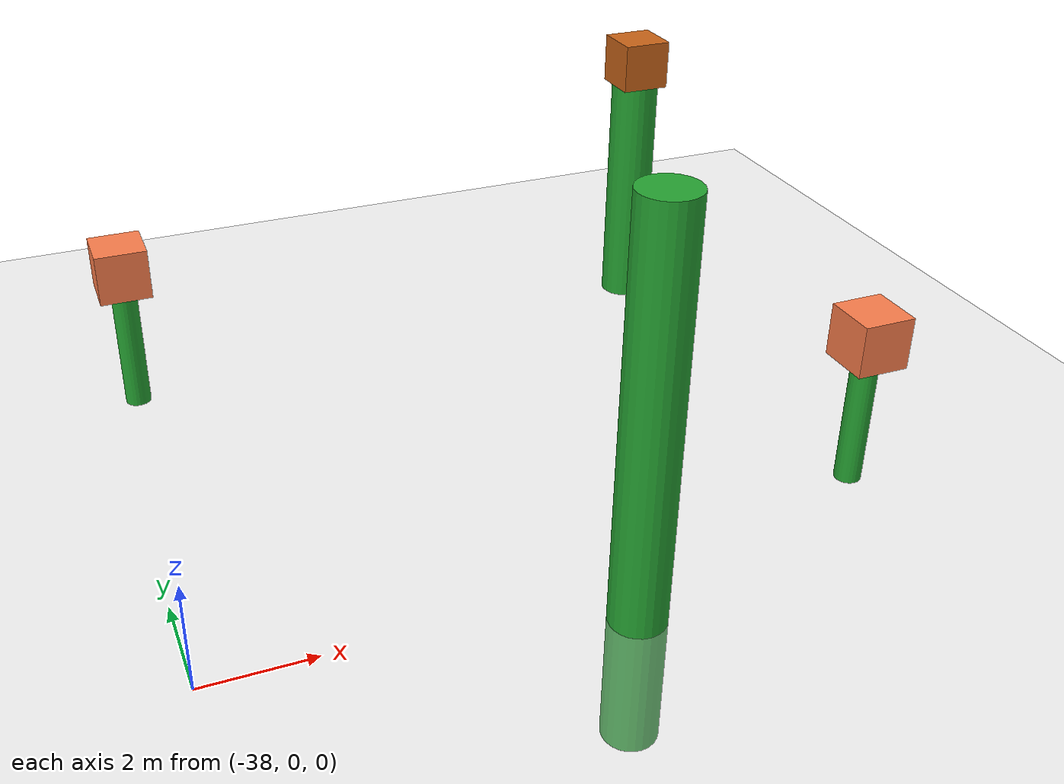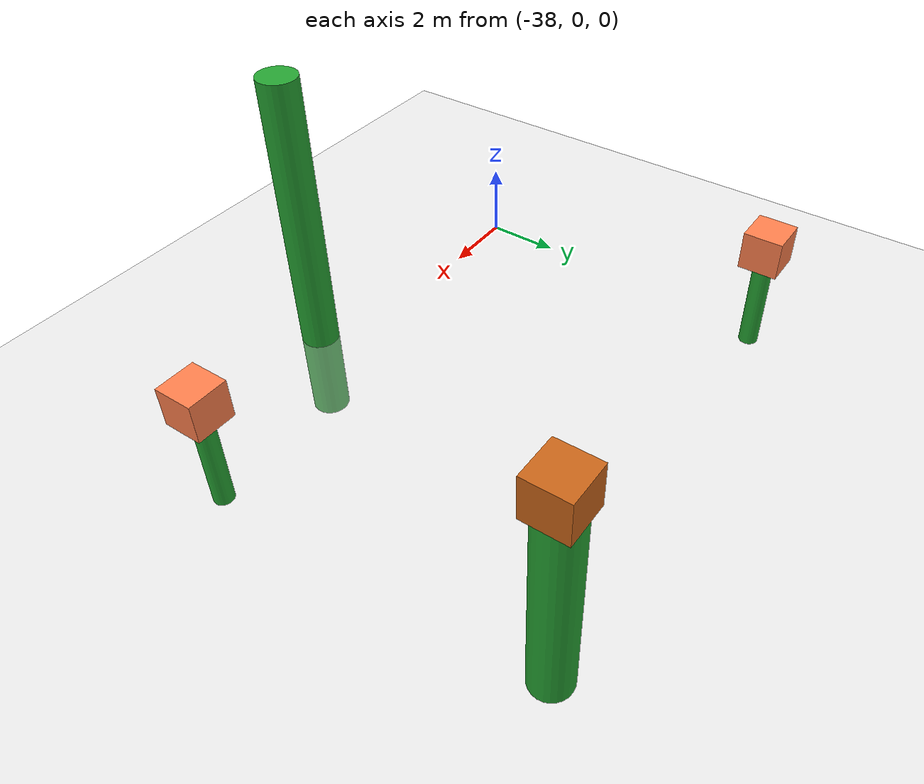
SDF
<sdf version="1.7">
 <world name="default">
  <model name="ground_plane">
   <static>1</static>
   <link name="link">
    <collision name="collision">
     <geometry><plane><normal>0 0 1</normal><size>100 100</size></plane></geometry>
     <surface>
      <contact><collide_bitmask>65535</collide_bitmask></contact>
      <friction><ode><mu>100</mu><mu2>50</mu2></ode></friction>
     </surface>
    </collision>
    <visual name="visual">
     <cast_shadows>0</cast_shadows>
     <geometry><plane><normal>0 0 1</normal><size>100 100</size></plane></geometry>
     <material>
      <script><uri>file://media/materials/scripts/gazebo.material</uri><name>Gazebo/Grey</name></script>
     </material>
    </visual>
   </link>
  </model>
  <model name="unit_cylinder_green_2_clone_clone_7">
   <link name="link">
    <inertial>
     <mass>1</mass>
     <inertia><ixx>0.145833</ixx><ixy>0</ixy><ixz>0</ixz><iyy>0.145833</iyy><iyz>0</iyz><izz>0.125</izz></inertia>
    </inertial>
    <visual name="visual">
     <geometry><cylinder><radius>0.5</radius><length>10</length></cylinder></geometry>
     <material>
      <script><name>Gazebo/Green</name><uri>file://media/materials/scripts/gazebo.material</uri></script>
      <shader type="pixel"><normal_map>__default__</normal_map></shader>
      <ambient>0 1 0.3 1</ambient>
      <diffuse>0.7 0.7 0.7 1</diffuse>
      <specular>0.01 0.01 0.01 1</specular>
      <emissive>0 0 0 1</emissive>
     </material>
    </visual>
    <collision name="collision">
     <geometry><cylinder><radius>0.5</radius><length>5</length></cylinder></geometry>
     <surface>
      <friction>
       <ode><mu>1</mu><mu2>1</mu2><fdir1>0 0 0</fdir1><slip1>0</slip1><slip2>0</slip2></ode>
       <torsional>
        <coefficient>1</coefficient>
        <patch_radius>0</patch_radius>
        <surface_radius>0</surface_radius>
        <use_patch_radius>1</use_patch_radius>
        <ode><slip>0</slip></ode>
       </torsional>
      </friction>
      <bounce><restitution_coefficient>0</restitution_coefficient><threshold>1e+06</threshold></bounce>
      <contact>
       <collide_without_contact>0</collide_without_contact>
       <collide_without_contact_bitmask>1</collide_without_contact_bitmask>
       <collide_bitmask>1</collide_bitmask>
       <ode>
        <soft_cfm>0</soft_cfm>
        <soft_erp>0.2</soft_erp>
        <kp>1e+13</kp>
        <kd>1</kd>
        <max_vel>0.01</max_vel>
        <min_depth>0</min_depth>
       </ode>
       <bullet>
        <split_impulse>1</split_impulse>
        <split_impulse_penetration_threshold>-0.01</split_impulse_penetration_threshold>
        <soft_cfm>0</soft_cfm>
        <soft_erp>0.2</soft_erp>
        <kp>1e+13</kp>
        <kd>1</kd>
       </bullet>
      </contact>
     </surface>
    </collision>
   </link>
   <static>1</static>
   <pose>-31 -1 2.5 0 0 -0.000967</pose>
  </model>
  <model name="unit_cylinder_green_2_clone_clone_3_clone_0_clone_0_clone_16">
   <link name="link">
    <inertial>
     <mass>1</mass>
     <inertia><ixx>0.145833</ixx><ixy>0</ixy><ixz>0</ixz><iyy>0.145833</iyy><iyz>0</iyz><izz>0.125</izz></inertia>
    </inertial>
    <visual name="visual">
     <geometry><cylinder><radius>0.5</radius><length>5</length></cylinder></geometry>
     <material>
      <script><name>Gazebo/Green</name><uri>file://media/materials/scripts/gazebo.material</uri></script>
      <shader type="pixel"><normal_map>__default__</normal_map></shader>
      <ambient>0 1 0.3 1</ambient>
      <diffuse>0.7 0.7 0.7 1</diffuse>
      <specular>0.01 0.01 0.01 1</specular>
      <emissive>0 0 0 1</emissive>
     </material>
    </visual>
    <collision name="collision">
     <geometry><cylinder><radius>0.5</radius><length>5</length></cylinder></geometry>
     <surface>
      <friction>
       <ode><mu>1</mu><mu2>1</mu2><fdir1>0 0 0</fdir1><slip1>0</slip1><slip2>0</slip2></ode>
       <torsional>
        <coefficient>1</coefficient>
        <patch_radius>0</patch_radius>
        <surface_radius>0</surface_radius>
        <use_patch_radius>1</use_patch_radius>
        <ode><slip>0</slip></ode>
       </torsional>
      </friction>
      <bounce><restitution_coefficient>0</restitution_coefficient><threshold>1e+06</threshold></bounce>
      <contact>
       <collide_without_contact>0</collide_without_contact>
       <collide_without_contact_bitmask>1</collide_without_contact_bitmask>
       <collide_bitmask>1</collide_bitmask>
       <ode>
        <soft_cfm>0</soft_cfm>
        <soft_erp>0.2</soft_erp>
        <kp>1e+13</kp>
        <kd>1</kd>
        <max_vel>0.01</max_vel>
        <min_depth>0</min_depth>
       </ode>
       <bullet>
        <split_impulse>1</split_impulse>
        <split_impulse_penetration_threshold>-0.01</split_impulse_penetration_threshold>
        <soft_cfm>0</soft_cfm>
        <soft_erp>0.2</soft_erp>
        <kp>1e+13</kp>
        <kd>1</kd>
       </bullet>
      </contact>
     </surface>
    </collision>
   </link>
   <link name="link_3">
    <inertial>
     <mass>1</mass>
     <inertia>
      <ixx>0.166667</ixx>
      <ixy>0</ixy>
      <ixz>0</ixz>
      <iyy>0.166667</iyy>
      <iyz>0</iyz>
      <izz>0.166667</izz>
     </inertia>
    </inertial>
    <pose>0 0 3 0 -0 0.000935</pose>
    <visual name="visual">
     <geometry><box><size>1 1 1</size></box></geometry>
     <material>
      <lighting>1</lighting>
      <script><uri>file://media/materials/scripts/gazebo.material</uri><name>Gazebo/Grey</name></script>
      <shader type="pixel"><normal_map>__default__</normal_map></shader>
      <ambient>0.8 0.4 0.1 1</ambient>
      <diffuse>0.7 0.7 0.7 1</diffuse>
      <specular>0.01 0.01 0.01 1</specular>
      <emissive>0 0 0 1</emissive>
     </material>
    </visual>
    <collision name="collision">
     <geometry><box><size>1 1 1</size></box></geometry>
     <surface>
      <friction>
       <ode><mu>1</mu><mu2>1</mu2><fdir1>0 0 0</fdir1><slip1>0</slip1><slip2>0</slip2></ode>
       <torsional>
        <coefficient>1</coefficient>
        <patch_radius>0</patch_radius>
        <surface_radius>0</surface_radius>
        <use_patch_radius>1</use_patch_radius>
        <ode><slip>0</slip></ode>
       </torsional>
      </friction>
      <bounce><restitution_coefficient>0</restitution_coefficient><threshold>1e+06</threshold></bounce>
      <contact>
       <collide_without_contact>0</collide_without_contact>
       <collide_without_contact_bitmask>1</collide_without_contact_bitmask>
       <collide_bitmask>1</collide_bitmask>
       <ode>
        <soft_cfm>0</soft_cfm>
        <soft_erp>0.2</soft_erp>
        <kp>1e+13</kp>
        <kd>1</kd>
        <max_vel>0.01</max_vel>
        <min_depth>0</min_depth>
       </ode>
       <bullet>
        <split_impulse>1</split_impulse>
        <split_impulse_penetration_threshold>-0.01</split_impulse_penetration_threshold>
        <soft_cfm>0</soft_cfm>
        <soft_erp>0.2</soft_erp>
        <kp>1e+13</kp>
        <kd>1</kd>
       </bullet>
      </contact>
     </surface>
    </collision>
   </link>
   <static>1</static>
   <pose>-25.8363 9.67708 2.49999 0 0 -0.000935</pose>
  </model>
  <model name="unit_cylinder_green_2_clone_clone_3_clone_0_clone_0_clone_82">
   <link name="link">
    <inertial>
     <mass>1</mass>
     <inertia><ixx>0.145833</ixx><ixy>0</ixy><ixz>0</ixz><iyy>0.145833</iyy><iyz>0</iyz><izz>0.125</izz></inertia>
    </inertial>
    <pose>0 0 -1.25 0 -0 0</pose>
    <visual name="visual">
     <geometry><cylinder><radius>0.25</radius><length>2.5</length></cylinder></geometry>
     <material>
      <script><name>Gazebo/Green</name><uri>file://media/materials/scripts/gazebo.material</uri></script>
      <shader type="pixel"><normal_map>__default__</normal_map></shader>
      <ambient>0 1 0.3 1</ambient>
      <diffuse>0.7 0.7 0.7 1</diffuse>
      <specular>0.01 0.01 0.01 1</specular>
      <emissive>0 0 0 1</emissive>
     </material>
    </visual>
    <collision name="collision">
     <geometry><cylinder><radius>0.5</radius><length>5</length></cylinder></geometry>
     <surface>
      <friction>
       <ode><mu>1</mu><mu2>1</mu2><fdir1>0 0 0</fdir1><slip1>0</slip1><slip2>0</slip2></ode>
       <torsional>
        <coefficient>1</coefficient>
        <patch_radius>0</patch_radius>
        <surface_radius>0</surface_radius>
        <use_patch_radius>1</use_patch_radius>
        <ode><slip>0</slip></ode>
       </torsional>
      </friction>
      <bounce><restitution_coefficient>0</restitution_coefficient><threshold>1e+06</threshold></bounce>
      <contact>
       <collide_without_contact>0</collide_without_contact>
       <collide_without_contact_bitmask>1</collide_without_contact_bitmask>
       <collide_bitmask>1</collide_bitmask>
       <ode>
        <soft_cfm>0</soft_cfm>
        <soft_erp>0.2</soft_erp>
        <kp>1e+13</kp>
        <kd>1</kd>
        <max_vel>0.01</max_vel>
        <min_depth>0</min_depth>
       </ode>
       <bullet>
        <split_impulse>1</split_impulse>
        <split_impulse_penetration_threshold>-0.01</split_impulse_penetration_threshold>
        <soft_cfm>0</soft_cfm>
        <soft_erp>0.2</soft_erp>
        <kp>1e+13</kp>
        <kd>1</kd>
       </bullet>
      </contact>
     </surface>
    </collision>
   </link>
   <link name="link_3">
    <inertial>
     <mass>1</mass>
     <inertia>
      <ixx>0.166667</ixx>
      <ixy>0</ixy>
      <ixz>0</ixz>
      <iyy>0.166667</iyy>
      <iyz>0</iyz>
      <izz>0.166667</izz>
     </inertia>
    </inertial>
    <pose>0 0 0.5 0 -0 0.000935</pose>
    <visual name="visual">
     <geometry><box><size>1 1 1</size></box></geometry>
     <material>
      <lighting>1</lighting>
      <script><uri>file://media/materials/scripts/gazebo.material</uri><name>Gazebo/Grey</name></script>
      <shader type="pixel"><normal_map>__default__</normal_map></shader>
      <ambient>1 0.5 0.3 1</ambient>
      <diffuse>0.7 0.7 0.7 1</diffuse>
      <specular>0.01 0.01 0.01 1</specular>
      <emissive>0 0 0 1</emissive>
     </material>
    </visual>
    <collision name="collision">
     <geometry><box><size>1 1 1</size></box></geometry>
     <surface>
      <friction>
       <ode><mu>1</mu><mu2>1</mu2><fdir1>0 0 0</fdir1><slip1>0</slip1><slip2>0</slip2></ode>
       <torsional>
        <coefficient>1</coefficient>
        <patch_radius>0</patch_radius>
        <surface_radius>0</surface_radius>
        <use_patch_radius>1</use_patch_radius>
        <ode><slip>0</slip></ode>
       </torsional>
      </friction>
      <bounce><restitution_coefficient>0</restitution_coefficient><threshold>1e+06</threshold></bounce>
      <contact>
       <collide_without_contact>0</collide_without_contact>
       <collide_without_contact_bitmask>1</collide_without_contact_bitmask>
       <collide_bitmask>1</collide_bitmask>
       <ode>
        <soft_cfm>0</soft_cfm>
        <soft_erp>0.2</soft_erp>
        <kp>1e+13</kp>
        <kd>1</kd>
        <max_vel>0.01</max_vel>
        <min_depth>0</min_depth>
       </ode>
       <bullet>
        <split_impulse>1</split_impulse>
        <split_impulse_penetration_threshold>-0.01</split_impulse_penetration_threshold>
        <soft_cfm>0</soft_cfm>
        <soft_erp>0.2</soft_erp>
        <kp>1e+13</kp>
        <kd>1</kd>
       </bullet>
      </contact>
     </surface>
    </collision>
   </link>
   <static>1</static>
   <pose>-25.5041 1.10028 2.49999 0 0 -0.000935</pose>
  </model>
  <model name="unit_cylinder_green_2_clone_clone_3_clone_0_clone_0_clone_88">
   <link name="link">
    <inertial>
     <mass>1</mass>
     <inertia><ixx>0.145833</ixx><ixy>0</ixy><ixz>0</ixz><iyy>0.145833</iyy><iyz>0</iyz><izz>0.125</izz></inertia>
    </inertial>
    <pose>0 0 -1.25 0 -0 0</pose>
    <visual name="visual">
     <geometry><cylinder><radius>0.25</radius><length>2.5</length></cylinder></geometry>
     <material>
      <script><name>Gazebo/Green</name><uri>file://media/materials/scripts/gazebo.material</uri></script>
      <shader type="pixel"><normal_map>__default__</normal_map></shader>
      <ambient>0 1 0.3 1</ambient>
      <diffuse>0.7 0.7 0.7 1</diffuse>
      <specular>0.01 0.01 0.01 1</specular>
      <emissive>0 0 0 1</emissive>
     </material>
    </visual>
    <collision name="collision">
     <geometry><cylinder><radius>0.5</radius><length>5</length></cylinder></geometry>
     <surface>
      <friction>
       <ode><mu>1</mu><mu2>1</mu2><fdir1>0 0 0</fdir1><slip1>0</slip1><slip2>0</slip2></ode>
       <torsional>
        <coefficient>1</coefficient>
        <patch_radius>0</patch_radius>
        <surface_radius>0</surface_radius>
        <use_patch_radius>1</use_patch_radius>
        <ode><slip>0</slip></ode>
       </torsional>
      </friction>
      <bounce><restitution_coefficient>0</restitution_coefficient><threshold>1e+06</threshold></bounce>
      <contact>
       <collide_without_contact>0</collide_without_contact>
       <collide_without_contact_bitmask>1</collide_without_contact_bitmask>
       <collide_bitmask>1</collide_bitmask>
       <ode>
        <soft_cfm>0</soft_cfm>
        <soft_erp>0.2</soft_erp>
        <kp>1e+13</kp>
        <kd>1</kd>
        <max_vel>0.01</max_vel>
        <min_depth>0</min_depth>
       </ode>
       <bullet>
        <split_impulse>1</split_impulse>
        <split_impulse_penetration_threshold>-0.01</split_impulse_penetration_threshold>
        <soft_cfm>0</soft_cfm>
        <soft_erp>0.2</soft_erp>
        <kp>1e+13</kp>
        <kd>1</kd>
       </bullet>
      </contact>
     </surface>
    </collision>
   </link>
   <link name="link_3">
    <inertial>
     <mass>1</mass>
     <inertia>
      <ixx>0.166667</ixx>
      <ixy>0</ixy>
      <ixz>0</ixz>
      <iyy>0.166667</iyy>
      <iyz>0</iyz>
      <izz>0.166667</izz>
     </inertia>
    </inertial>
    <pose>0 0 0.5 0 -0 0.000935</pose>
    <visual name="visual">
     <geometry><box><size>1 1 1</size></box></geometry>
     <material>
      <lighting>1</lighting>
      <script><uri>file://media/materials/scripts/gazebo.material</uri><name>Gazebo/Grey</name></script>
      <shader type="pixel"><normal_map>__default__</normal_map></shader>
      <ambient>1 0.5 0.3 1</ambient>
      <diffuse>0.7 0.7 0.7 1</diffuse>
      <specular>0.01 0.01 0.01 1</specular>
      <emissive>0 0 0 1</emissive>
     </material>
    </visual>
    <collision name="collision">
     <geometry><box><size>1 1 1</size></box></geometry>
     <surface>
      <friction>
       <ode><mu>1</mu><mu2>1</mu2><fdir1>0 0 0</fdir1><slip1>0</slip1><slip2>0</slip2></ode>
       <torsional>
        <coefficient>1</coefficient>
        <patch_radius>0</patch_radius>
        <surface_radius>0</surface_radius>
        <use_patch_radius>1</use_patch_radius>
        <ode><slip>0</slip></ode>
       </torsional>
      </friction>
      <bounce><restitution_coefficient>0</restitution_coefficient><threshold>1e+06</threshold></bounce>
      <contact>
       <collide_without_contact>0</collide_without_contact>
       <collide_without_contact_bitmask>1</collide_without_contact_bitmask>
       <collide_bitmask>1</collide_bitmask>
       <ode>
        <soft_cfm>0</soft_cfm>
        <soft_erp>0.2</soft_erp>
        <kp>1e+13</kp>
        <kd>1</kd>
        <max_vel>0.01</max_vel>
        <min_depth>0</min_depth>
       </ode>
       <bullet>
        <split_impulse>1</split_impulse>
        <split_impulse_penetration_threshold>-0.01</split_impulse_penetration_threshold>
        <soft_cfm>0</soft_cfm>
        <soft_erp>0.2</soft_erp>
        <kp>1e+13</kp>
        <kd>1</kd>
       </bullet>
      </contact>
     </surface>
    </collision>
   </link>
   <static>1</static>
   <pose>-37.4145 8.70571 2.49999 0 0 -0.000935</pose>
  </model>
 </world>
</sdf>
